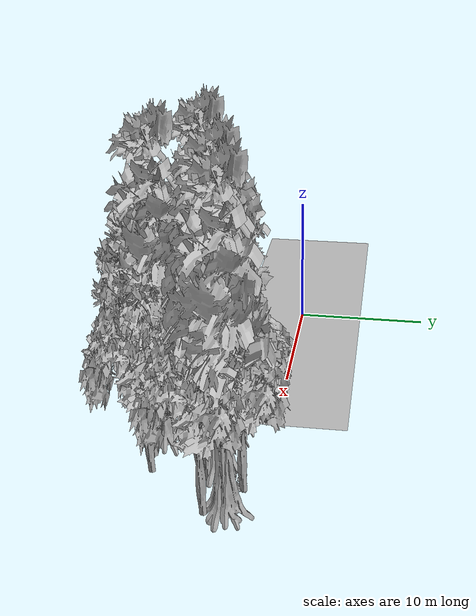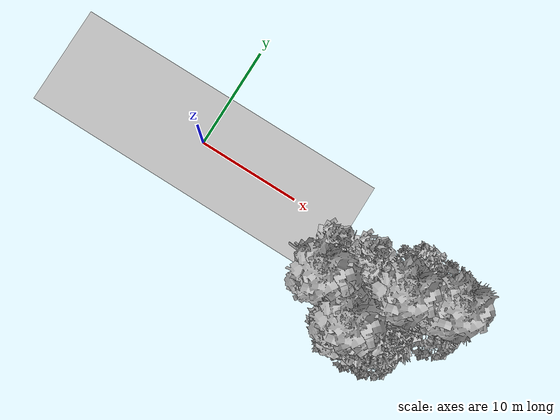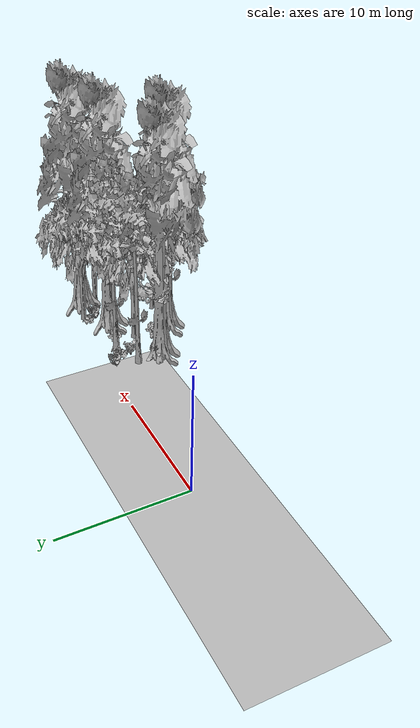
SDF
<sdf version="1.7">
 <world name="default">
  <model name="ground_plane">
   <static>1</static>
   <link name="link">
    <collision name="collision">
     <geometry><plane><normal>0 0 1</normal><size>100 100</size></plane></geometry>
     <surface><contact><ode><min_depth>0.01</min_depth><max_vel>0</max_vel></ode></contact></surface>
    </collision>
    <visual name="grass">
     <cast_shadows>0</cast_shadows>
     <geometry>
      <mesh>
       <scale>0.5814285714285714 0.18142857142857144 0.1</scale>
       <uri>file://grass_plane/meshes/grass_plane.dae</uri>
      </mesh>
     </geometry>
    </visual>
   </link>
  </model>
  <model name="Tree 38">
   <static>1</static>
   <pose>21.341184049060885 -7.069683319017203 0 1.57079 -0 0</pose>
   <link name="link">
    <collision name="collision">
     <geometry><mesh><scale>3.5 5 3.5</scale><uri>model://tree_2/meshes/tree_2.obj</uri></mesh></geometry>
    </collision>
    <visual name="visual">
     <geometry><mesh><scale>3.5 5 3.5</scale><uri>model://tree_2/meshes/tree_2.obj</uri></mesh></geometry>
    </visual>
   </link>
  </model>
  <model name="Tree 57">
   <static>1</static>
   <pose>17.552309237532214 -1.948340601883082 0 1.57079 -0 0</pose>
   <link name="link">
    <collision name="collision">
     <geometry><mesh><scale>3.5 5 3.5</scale><uri>model://tree_9/meshes/tree_9.obj</uri></mesh></geometry>
    </collision>
    <visual name="visual">
     <geometry><mesh><scale>3.5 5 3.5</scale><uri>model://tree_9/meshes/tree_9.obj</uri></mesh></geometry>
    </visual>
   </link>
  </model>
  <model name="Tree 126">
   <static>1</static>
   <pose>24.557998020080078 -1.6681188044443722 0 1.57079 -0 0</pose>
   <link name="link">
    <collision name="collision">
     <geometry><mesh><scale>3.5 5 3.5</scale><uri>model://tree_4/meshes/tree_4.obj</uri></mesh></geometry>
    </collision>
    <visual name="visual">
     <geometry><mesh><scale>3.5 5 3.5</scale><uri>model://tree_4/meshes/tree_4.obj</uri></mesh></geometry>
    </visual>
   </link>
  </model>
  <model name="Tree 142">
   <static>1</static>
   <pose>14.769244268025687 -2.7324493554839187 0 1.57079 -0 0</pose>
   <link name="link">
    <collision name="collision">
     <geometry><mesh><scale>3.5 5 3.5</scale><uri>model://tree_9/meshes/tree_9.obj</uri></mesh></geometry>
    </collision>
    <visual name="visual">
     <geometry><mesh><scale>3.5 5 3.5</scale><uri>model://tree_9/meshes/tree_9.obj</uri></mesh></geometry>
    </visual>
   </link>
  </model>
  <model name="Tree 170">
   <static>1</static>
   <pose>21.593704927821207 -3.413089220473646 0 1.57079 -0 0</pose>
   <link name="link">
    <collision name="collision">
     <geometry><mesh><scale>3.5 5 3.5</scale><uri>model://tree_2/meshes/tree_2.obj</uri></mesh></geometry>
    </collision>
    <visual name="visual">
     <geometry><mesh><scale>3.5 5 3.5</scale><uri>model://tree_2/meshes/tree_2.obj</uri></mesh></geometry>
    </visual>
   </link>
  </model>
  <model name="Tree 223">
   <static>1</static>
   <pose>18.04208982013104 -3.845989853645799 0 1.57079 -0 0</pose>
   <link name="link">
    <collision name="collision">
     <geometry><mesh><scale>3.5 5 3.5</scale><uri>model://tree_2/meshes/tree_2.obj</uri></mesh></geometry>
    </collision>
    <visual name="visual">
     <geometry><mesh><scale>3.5 5 3.5</scale><uri>model://tree_2/meshes/tree_2.obj</uri></mesh></geometry>
    </visual>
   </link>
  </model>
  <model name="Tree 230">
   <static>1</static>
   <pose>18.27624546498282 -6.932044593627133 0 1.57079 -0 0</pose>
   <link name="link">
    <collision name="collision">
     <geometry><mesh><scale>3.5 5 3.5</scale><uri>model://tree_4/meshes/tree_4.obj</uri></mesh></geometry>
    </collision>
    <visual name="visual">
     <geometry><mesh><scale>3.5 5 3.5</scale><uri>model://tree_4/meshes/tree_4.obj</uri></mesh></geometry>
    </visual>
   </link>
  </model>
  <model name="Tree 282">
   <static>1</static>
   <pose>19.14097545568262 -7.757143512438651 0 1.57079 -0 0</pose>
   <link name="link">
    <collision name="collision">
     <geometry><mesh><scale>3.5 5 3.5</scale><uri>model://tree_9/meshes/tree_9.obj</uri></mesh></geometry>
    </collision>
    <visual name="visual">
     <geometry><mesh><scale>3.5 5 3.5</scale><uri>model://tree_9/meshes/tree_9.obj</uri></mesh></geometry>
    </visual>
   </link>
  </model>
  <model name="Tree 300">
   <static>1</static>
   <pose>19.759293135909843 -7.339431775280451 0 1.57079 -0 0</pose>
   <link name="link">
    <collision name="collision">
     <geometry><mesh><scale>3.5 5 3.5</scale><uri>model://tree_2/meshes/tree_2.obj</uri></mesh></geometry>
    </collision>
    <visual name="visual">
     <geometry><mesh><scale>3.5 5 3.5</scale><uri>model://tree_2/meshes/tree_2.obj</uri></mesh></geometry>
    </visual>
   </link>
  </model>
  <model name="Tree 312">
   <static>1</static>
   <pose>14.7831792012922 -4.764221361347754 0 1.57079 -0 0</pose>
   <link name="link">
    <collision name="collision">
     <geometry><mesh><scale>3.5 5 3.5</scale><uri>model://tree_4/meshes/tree_4.obj</uri></mesh></geometry>
    </collision>
    <visual name="visual">
     <geometry><mesh><scale>3.5 5 3.5</scale><uri>model://tree_4/meshes/tree_4.obj</uri></mesh></geometry>
    </visual>
   </link>
  </model>
  <model name="Tree 333">
   <static>1</static>
   <pose>22.409172010065305 -1.031690358732071 0 1.57079 -0 0</pose>
   <link name="link">
    <collision name="collision">
     <geometry><mesh><scale>3.5 5 3.5</scale><uri>model://tree_2/meshes/tree_2.obj</uri></mesh></geometry>
    </collision>
    <visual name="visual">
     <geometry><mesh><scale>3.5 5 3.5</scale><uri>model://tree_2/meshes/tree_2.obj</uri></mesh></geometry>
    </visual>
   </link>
  </model>
  <model name="Tree 374">
   <static>1</static>
   <pose>20.79770336644434 -2.7548916965321357 0 1.57079 -0 0</pose>
   <link name="link">
    <collision name="collision">
     <geometry><mesh><scale>3.5 5 3.5</scale><uri>model://tree_4/meshes/tree_4.obj</uri></mesh></geometry>
    </collision>
    <visual name="visual">
     <geometry><mesh><scale>3.5 5 3.5</scale><uri>model://tree_4/meshes/tree_4.obj</uri></mesh></geometry>
    </visual>
   </link>
  </model>
  <model name="Tree 432">
   <static>1</static>
   <pose>24.740639085401682 -3.0297377619116777 0 1.57079 -0 0</pose>
   <link name="link">
    <collision name="collision">
     <geometry><mesh><scale>3.5 5 3.5</scale><uri>model://tree_2/meshes/tree_2.obj</uri></mesh></geometry>
    </collision>
    <visual name="visual">
     <geometry><mesh><scale>3.5 5 3.5</scale><uri>model://tree_2/meshes/tree_2.obj</uri></mesh></geometry>
    </visual>
   </link>
  </model>
  <model name="Bush 91">
   <static>1</static>
   <pose>18.6171208073756 -2.2630477821435786 0 1.57079 -0 0</pose>
   <link name="link">
    <collision name="collision">
     <geometry><mesh><scale>2 2 2</scale><uri>model://bush_3/meshes/bush_3.obj</uri></mesh></geometry>
     <surface><contact><collide_without_contact>false</collide_without_contact></contact></surface>
    </collision>
    <visual name="visual">
     <geometry><mesh><scale>2 2 2</scale><uri>model://bush_3/meshes/bush_3.obj</uri></mesh></geometry>
    </visual>
   </link>
  </model>
  <model name="Bush 168">
   <static>1</static>
   <pose>22.150317228101684 -1.3714484992800031 0 1.57079 -0 0</pose>
   <link name="link">
    <collision name="collision">
     <geometry><mesh><scale>2 2 2</scale><uri>model://bush_2/meshes/bush_2.obj</uri></mesh></geometry>
     <surface><contact><collide_without_contact>false</collide_without_contact></contact></surface>
    </collision>
    <visual name="visual">
     <geometry><mesh><scale>2 2 2</scale><uri>model://bush_2/meshes/bush_2.obj</uri></mesh></geometry>
    </visual>
   </link>
  </model>
  <model name="Bush 192">
   <static>1</static>
   <pose>22.24882469207661 -1.9816066325499513 0 1.57079 -0 0</pose>
   <link name="link">
    <collision name="collision">
     <geometry><mesh><scale>2 2 2</scale><uri>model://bush_4/meshes/bush_4.obj</uri></mesh></geometry>
     <surface><contact><collide_without_contact>false</collide_without_contact></contact></surface>
    </collision>
    <visual name="visual">
     <geometry><mesh><scale>2 2 2</scale><uri>model://bush_4/meshes/bush_4.obj</uri></mesh></geometry>
    </visual>
   </link>
  </model>
  <model name="Bush 202">
   <static>1</static>
   <pose>15.200345528980073 -0.9355028209634124 0 1.57079 -0 0</pose>
   <link name="link">
    <collision name="collision">
     <geometry><mesh><scale>2 2 2</scale><uri>model://bush_4/meshes/bush_4.obj</uri></mesh></geometry>
     <surface><contact><collide_without_contact>false</collide_without_contact></contact></surface>
    </collision>
    <visual name="visual">
     <geometry><mesh><scale>2 2 2</scale><uri>model://bush_4/meshes/bush_4.obj</uri></mesh></geometry>
    </visual>
   </link>
  </model>
  <model name="Bush 218">
   <static>1</static>
   <pose>15.955219670054035 -1.5763918050877166 0 1.57079 -0 0</pose>
   <link name="link">
    <collision name="collision">
     <geometry><mesh><scale>2 2 2</scale><uri>model://bush_3/meshes/bush_3.obj</uri></mesh></geometry>
     <surface><contact><collide_without_contact>false</collide_without_contact></contact></surface>
    </collision>
    <visual name="visual">
     <geometry><mesh><scale>2 2 2</scale><uri>model://bush_3/meshes/bush_3.obj</uri></mesh></geometry>
    </visual>
   </link>
  </model>
  <model name="Bush 229">
   <static>1</static>
   <pose>14.650730246136945 -4.388998320042797 0 1.57079 -0 0</pose>
   <link name="link">
    <collision name="collision">
     <geometry><mesh><scale>2 2 2</scale><uri>model://bush_4/meshes/bush_4.obj</uri></mesh></geometry>
     <surface><contact><collide_without_contact>false</collide_without_contact></contact></surface>
    </collision>
    <visual name="visual">
     <geometry><mesh><scale>2 2 2</scale><uri>model://bush_4/meshes/bush_4.obj</uri></mesh></geometry>
    </visual>
   </link>
  </model>
  <model name="Bush 235">
   <static>1</static>
   <pose>18.112437891989188 -5.5440884028465796 0 1.57079 -0 0</pose>
   <link name="link">
    <collision name="collision">
     <geometry><mesh><scale>2 2 2</scale><uri>model://bush_3/meshes/bush_3.obj</uri></mesh></geometry>
     <surface><contact><collide_without_contact>false</collide_without_contact></contact></surface>
    </collision>
    <visual name="visual">
     <geometry><mesh><scale>2 2 2</scale><uri>model://bush_3/meshes/bush_3.obj</uri></mesh></geometry>
    </visual>
   </link>
  </model>
  <model name="Bush 237">
   <static>1</static>
   <pose>18.488104020378188 -7.436099061991436 0 1.57079 -0 0</pose>
   <link name="link">
    <collision name="collision">
     <geometry><mesh><scale>2 2 2</scale><uri>model://bush_2/meshes/bush_2.obj</uri></mesh></geometry>
     <surface><contact><collide_without_contact>false</collide_without_contact></contact></surface>
    </collision>
    <visual name="visual">
     <geometry><mesh><scale>2 2 2</scale><uri>model://bush_2/meshes/bush_2.obj</uri></mesh></geometry>
    </visual>
   </link>
  </model>
  <model name="Bush 252">
   <static>1</static>
   <pose>16.013196625790314 -2.5710611137991553 0 1.57079 -0 0</pose>
   <link name="link">
    <collision name="collision">
     <geometry><mesh><scale>2 2 2</scale><uri>model://bush_0/meshes/bush_0.obj</uri></mesh></geometry>
     <surface><contact><collide_without_contact>false</collide_without_contact></contact></surface>
    </collision>
    <visual name="visual">
     <geometry><mesh><scale>2 2 2</scale><uri>model://bush_0/meshes/bush_0.obj</uri></mesh></geometry>
    </visual>
   </link>
  </model>
 </world>
</sdf>
